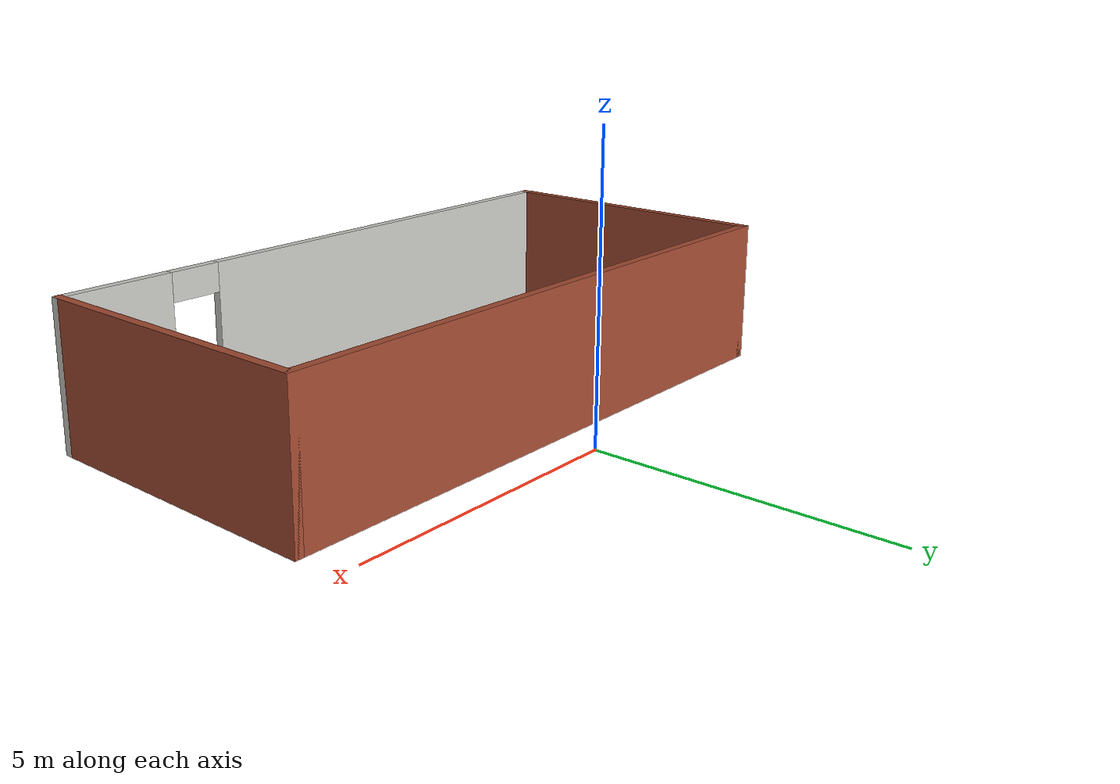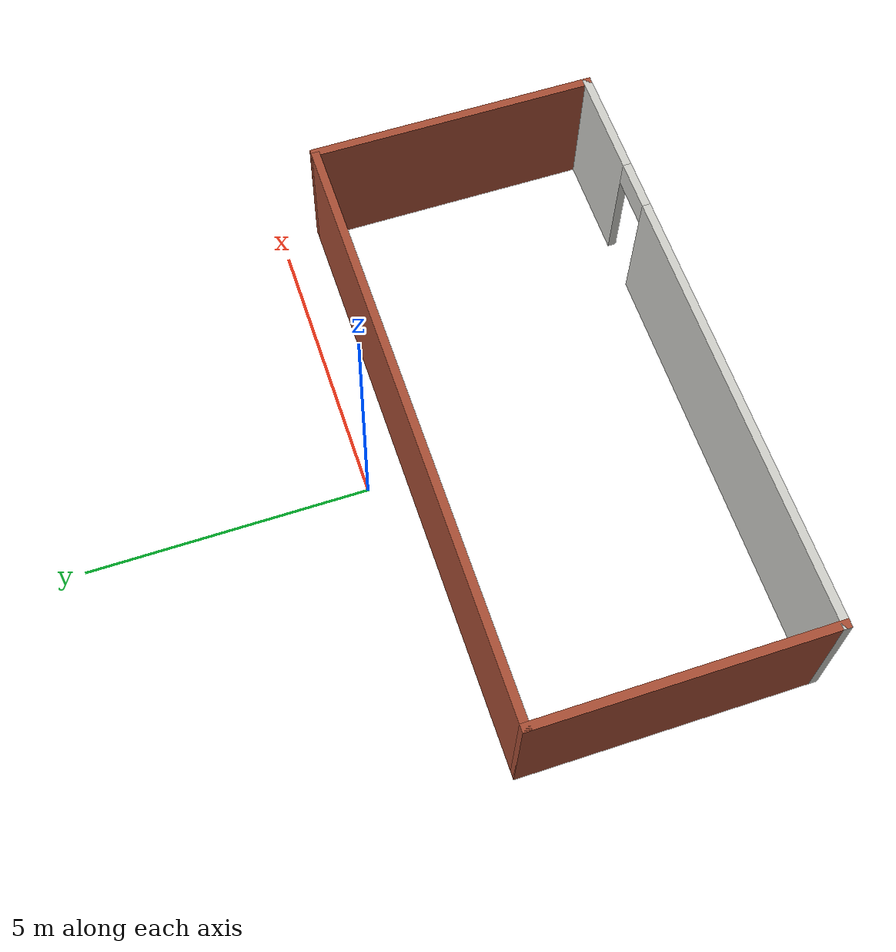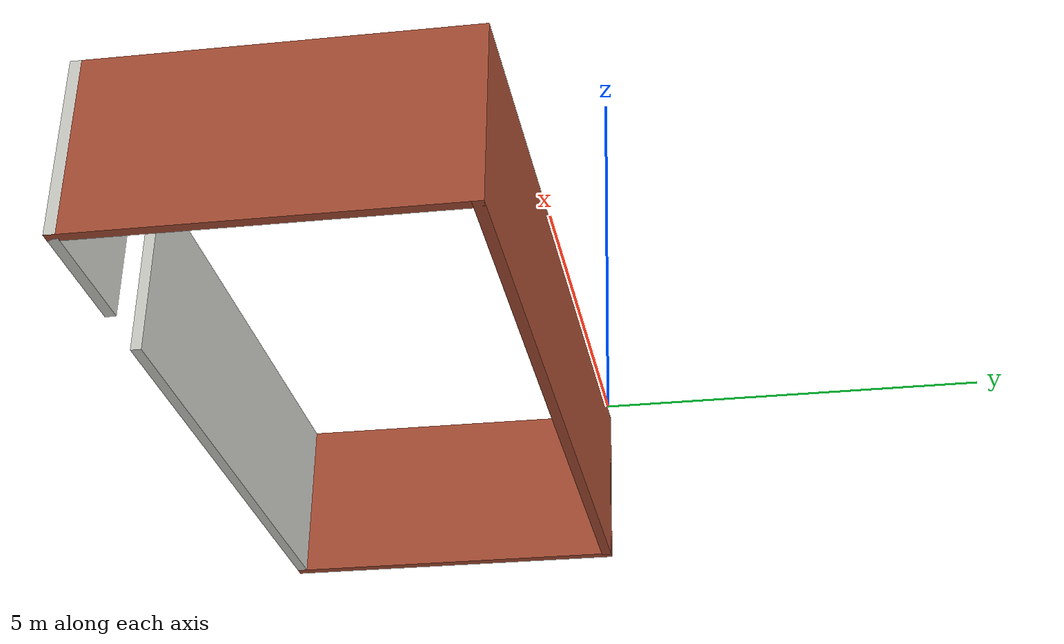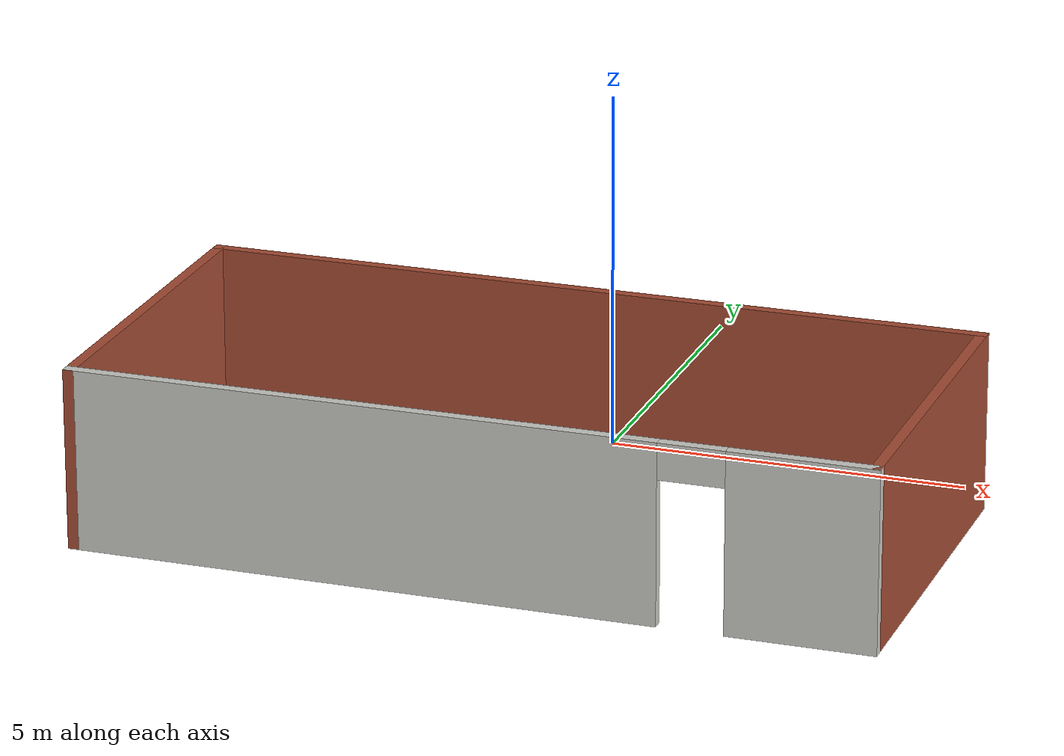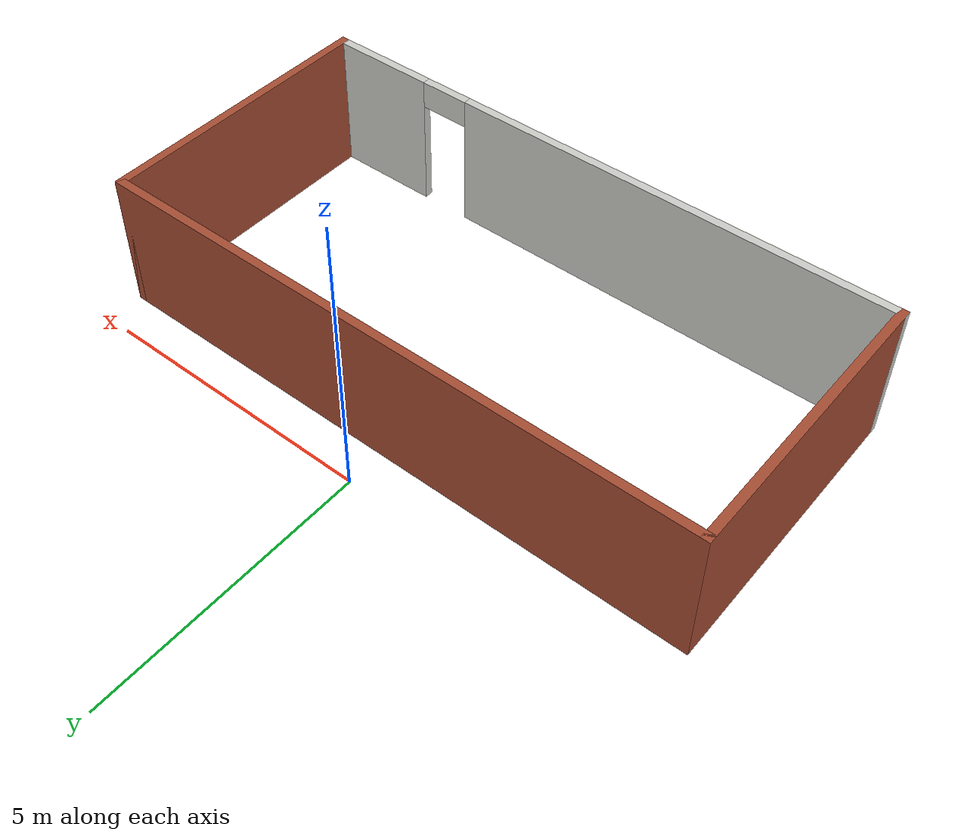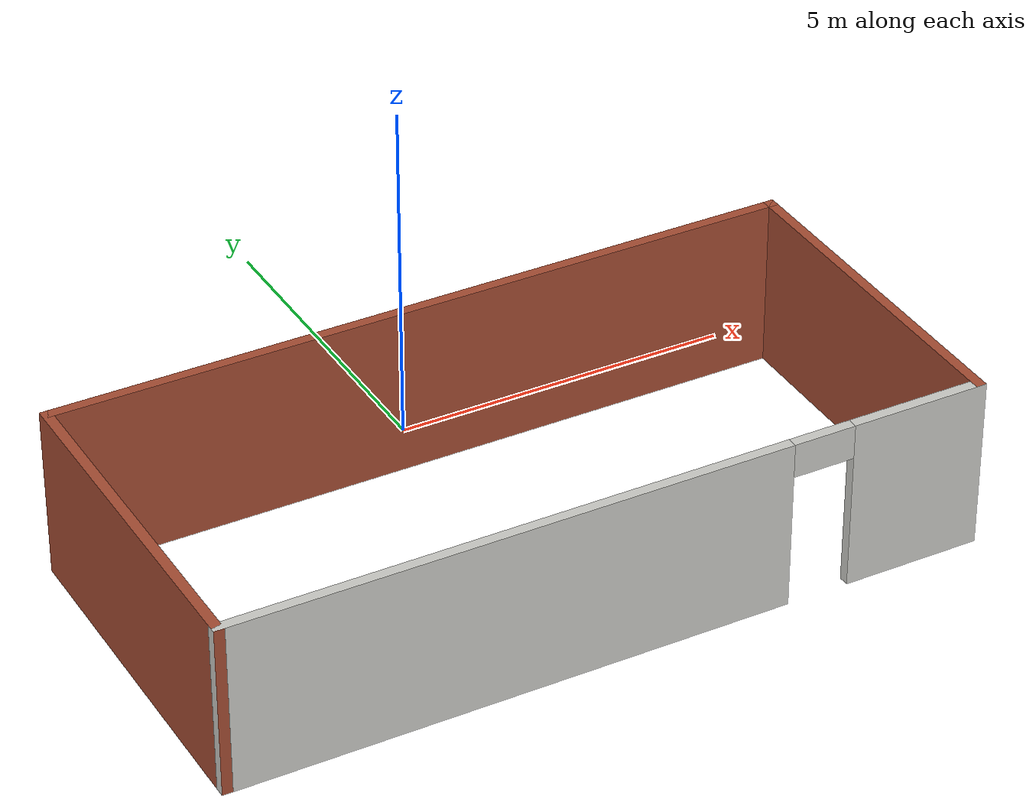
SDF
<?xml version='1.0'?>
<sdf version='1.7'>
  <model name='library'>
    <pose>-0.045 -2.9675 0 0 -0 0</pose>
    <link name='Wall_0'>
      <collision name='Wall_0_Collision'>
        <geometry>
          <box>
            <size>11 0.15 2.5</size>
          </box>
        </geometry>
        <pose>0 0 1.25 0 -0 0</pose>
      </collision>
      <visual name='Wall_0_Visual'>
        <pose>0 0 1.25 0 -0 0</pose>
        <geometry>
          <box>
            <size>11 0.15 2.5</size>
          </box>
        </geometry>
        <material>
          <script>
            <uri>file://media/materials/scripts/gazebo.material</uri>
            <name>Gazebo/Bricks</name>
          </script>
          <ambient>1 1 1 1</ambient>
        </material>
        <meta>
          <layer>0</layer>
        </meta>
      </visual>
      <pose>-0 2.2075 0 0 -0 0</pose>
    </link>
    <link name='Wall_1'>
      <collision name='Wall_1_Collision'>
        <geometry>
          <box>
            <size>5.25 0.15 2.5</size>
          </box>
        </geometry>
        <pose>0 0 1.25 0 -0 0</pose>
      </collision>
      <visual name='Wall_1_Visual'>
        <pose>0 0 1.25 0 -0 0</pose>
        <geometry>
          <box>
            <size>5.25 0.15 2.5</size>
          </box>
        </geometry>
        <material>
          <script>
            <uri>file://media/materials/scripts/gazebo.material</uri>
            <name>Gazebo/Bricks</name>
          </script>
          <ambient>1 1 1 1</ambient>
        </material>
        <meta>
          <layer>0</layer>
        </meta>
      </visual>
      <pose>5.425 -0.3425 0 0 -0 -1.5708</pose>
    </link>
    <link name='Wall_2'>
      <pose>-0 -2.8925 0 0 -0 3.14159</pose>
      <visual name='Wall_2_Visual_0'>
        <pose>-4.49689 0 1.25 0 -0 0</pose>
        <geometry>
          <box>
            <size>2.00622 0.15 2.5</size>
          </box>
        </geometry>
        <material>
          <script>
            <uri>file://media/materials/scripts/gazebo.material</uri>
            <name>Gazebo/CeilingTiled</name>
          </script>
          <ambient>0.921569 0.807843 0.615686 1</ambient>
        </material>
        <meta>
          <layer>0</layer>
        </meta>
      </visual>
      <collision name='Wall_2_Collision_0'>
        <geometry>
          <box>
            <size>2.00622 0.15 2.5</size>
          </box>
        </geometry>
        <pose>-4.49689 0 1.25 0 -0 0</pose>
      </collision>
      <visual name='Wall_2_Visual_1'>
        <pose>1.45311 0 1.25 0 -0 0</pose>
        <geometry>
          <box>
            <size>8.09378 0.15 2.5</size>
          </box>
        </geometry>
        <material>
          <script>
            <uri>file://media/materials/scripts/gazebo.material</uri>
            <name>Gazebo/CeilingTiled</name>
          </script>
          <ambient>0.921569 0.807843 0.615686 1</ambient>
        </material>
        <meta>
          <layer>0</layer>
        </meta>
      </visual>
      <collision name='Wall_2_Collision_1'>
        <geometry>
          <box>
            <size>8.09378 0.15 2.5</size>
          </box>
        </geometry>
        <pose>1.45311 0 1.25 0 -0 0</pose>
      </collision>
      <visual name='Wall_2_Visual_2'>
        <pose>-3.04378 0 2.25 0 -0 0</pose>
        <geometry>
          <box>
            <size>0.9 0.15 0.5</size>
          </box>
        </geometry>
        <material>
          <script>
            <uri>file://media/materials/scripts/gazebo.material</uri>
            <name>Gazebo/CeilingTiled</name>
          </script>
          <ambient>0.921569 0.807843 0.615686 1</ambient>
        </material>
        <meta>
          <layer>0</layer>
        </meta>
      </visual>
      <collision name='Wall_2_Collision_2'>
        <geometry>
          <box>
            <size>0.9 0.15 0.5</size>
          </box>
        </geometry>
        <pose>-3.04378 0 2.25 0 -0 0</pose>
      </collision>
    </link>
    <link name='Wall_3'>
      <collision name='Wall_3_Collision'>
        <geometry>
          <box>
            <size>5.25 0.15 2.5</size>
          </box>
        </geometry>
        <pose>0 0 1.25 0 -0 0</pose>
      </collision>
      <visual name='Wall_3_Visual'>
        <pose>0 0 1.25 0 -0 0</pose>
        <geometry>
          <box>
            <size>5.25 0.15 2.5</size>
          </box>
        </geometry>
        <material>
          <script>
            <uri>file://media/materials/scripts/gazebo.material</uri>
            <name>Gazebo/Bricks</name>
          </script>
          <ambient>1 1 1 1</ambient>
        </material>
        <meta>
          <layer>0</layer>
        </meta>
      </visual>
      <pose>-5.425 -0.3425 0 0 -0 1.5708</pose>
    </link>
    <static>1</static>
  </model>
</sdf>
